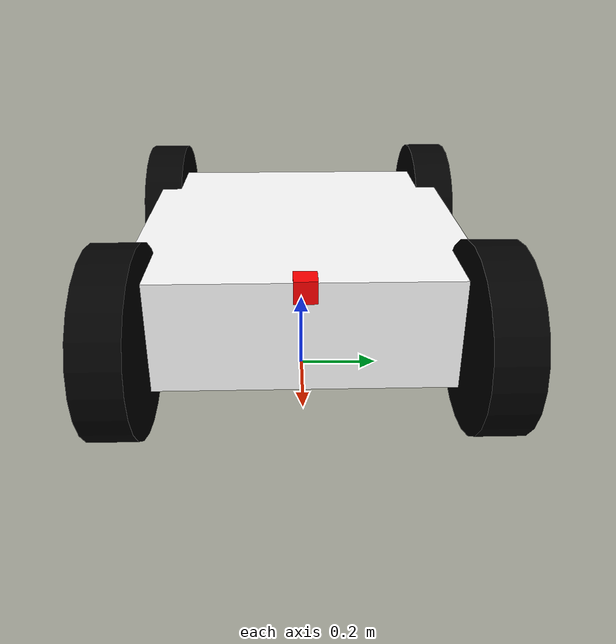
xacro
<?xml version="1.0"?>
<!-- |    robot.urdf.xacro  (ROS 2 / gz port)                                    | -->
<!-- |    author: Koji Shibata                                                   | -->
<!-- |    e-mail: kshibata.0519@gmail.com                                        | -->
<!-- |    This is a URDF file that describes an omnidirectional                   | -->
<!-- |    four-wheeled robot for ROS 2 users.                                     | -->
<robot name="omnidirectional_four_wheeled_robot" xmlns:xacro="http://ros.org/wiki/xacro">
<xacro:property name="x_size" value="0.75"/>
<xacro:property name="y_size" value="0.75"/>
<xacro:property name="z_size" value="0.25"/>
<xacro:property name="body_mass" value="1."/>
<xacro:property name="cylinder_radius" value="0.2"/>
<xacro:property name="cylinder_length" value="0.1"/>
<xacro:property name="wheel_mass" value="0.5"/>
<xacro:property name="effort_limit" value="1."/>
<xacro:property name="velocity_limit" value="5."/>

<!-- Absolute path to the ros2_control controller configuration.                -->
<!-- Passed in from the launch file (resolved from the package share dir).      -->
<xacro:arg name="controllers_config" default=""/>

<xacro:include filename="$(find omnidirectional_four_wheeled_robot)/urdf/wheel.urdf.xacro"/>
<xacro:include filename="$(find omnidirectional_four_wheeled_robot)/urdf/camera.urdf.xacro"/>
<xacro:include filename="$(find omnidirectional_four_wheeled_robot)/urdf/laser.urdf.xacro"/>

	<link name="base_link"/>
	<link name="body_link">
		<visual>
			<geometry>
				<box size="${x_size} ${y_size} ${z_size}"/>
			</geometry>
			<material name="White">
				<color rgba="1. 1. 1. 1."/>
			</material>
		</visual>

		<collision>
			<geometry>
				<box size="${x_size} ${y_size} ${z_size}"/>
			</geometry>
		</collision>

		<inertial>
			<origin xyz="0. 0. 0."/>
			<mass value="${body_mass}"/>
			<inertia ixx="${body_mass * (y_size**2 + z_size**2) / 12}" ixy="0." ixz="0."
					  iyy="${body_mass * (x_size**2 + z_size**2) / 12}" iyz="0."
					  izz="${body_mass * (x_size**2 + y_size**2) / 12}"/>
		</inertial>
	</link>

	<link name="frontPoint_link">
		<visual>
			<geometry>
				<box size="0.05 0.05 0.05"/>
			</geometry>
			<material name="Red">
				<color rgba="1. 0. 0. 1."/>
			</material>
		</visual>

		<collision>
			<geometry>
				<box size="0.05 0.05 0.05"/>
			</geometry>
		</collision>

		<inertial>
			<origin xyz="0. 0. 0."/>
			<mass value="1.e-6"/>
			<inertia ixx="1.e-6" ixy="0." ixz="0." iyy="1.e-6" iyz="0." izz="1.e-6"/>
		</inertial>
	</link>

	<joint name="base_joint" type="fixed">
		<origin xyz="0. 0. 0.3" rpy="0. 0. 0."/>
		<parent link="base_link"/>
		<child link="body_link"/>
		<dynamics damping="0." friction="0."/>
	</joint>

	<joint name="frontPoint_joint" type="fixed">
		<origin xyz="${x_size/2 - 0.02} 0. ${z_size/2 - 0.02}" rpy="0. 0. 0."/>
		<parent link="body_link"/>
		<child link="frontPoint_link"/>
	</joint>

	<xacro:wheel_macro suffix="FRwheel" parent="body_link" x_pos="0.375"  y_pos="0.375"/>
	<xacro:wheel_macro suffix="RRwheel" parent="body_link" x_pos="0.375"  y_pos="-0.375"/>
	<xacro:wheel_macro suffix="FLwheel" parent="body_link" x_pos="-0.375" y_pos="0.375"/>
	<xacro:wheel_macro suffix="RLwheel" parent="body_link" x_pos="-0.375" y_pos="-0.375"/>
	<xacro:camera_macro prefix="camera" parent="body_link" xyz="${x_size/2} 0. ${z_size/2}"/>

	<!-- ros2_control: a single system aggregating all 8 wheel joints. -->
	<ros2_control name="GazeboSimSystem" type="system">
		<hardware>
			<plugin>gz_ros2_control/GazeboSimSystem</plugin>
		</hardware>
		<xacro:wheel_ros2_control suffix="FRwheel"/>
		<xacro:wheel_ros2_control suffix="RRwheel"/>
		<xacro:wheel_ros2_control suffix="FLwheel"/>
		<xacro:wheel_ros2_control suffix="RLwheel"/>
	</ros2_control>

	<gazebo reference="base_link">
		<mu1 value="0.05"/>
		<mu2 value="0.05"/>
	</gazebo>

	<gazebo reference="frontPoint_link">
		<material>Gazebo/Red</material>
	</gazebo>

	<!-- IMU sensor (handled by gz-sim-imu-system, bridged to ROS). -->
	<gazebo reference="body_link">
		<sensor name="imu_sensor" type="imu">
			<always_on>1</always_on>
			<update_rate>50</update_rate>
			<topic>imu</topic>
			<gz_frame_id>body_link</gz_frame_id>
			<imu>
				<angular_velocity>
					<x><noise type="gaussian"><mean>0.</mean><stddev>1.e-3</stddev></noise></x>
					<y><noise type="gaussian"><mean>0.</mean><stddev>1.e-3</stddev></noise></y>
					<z><noise type="gaussian"><mean>0.</mean><stddev>1.e-3</stddev></noise></z>
				</angular_velocity>
				<linear_acceleration>
					<x><noise type="gaussian"><mean>0.</mean><stddev>1.e-3</stddev></noise></x>
					<y><noise type="gaussian"><mean>0.</mean><stddev>1.e-3</stddev></noise></y>
					<z><noise type="gaussian"><mean>0.</mean><stddev>1.e-3</stddev></noise></z>
				</linear_acceleration>
			</imu>
		</sensor>
	</gazebo>

	<!-- gz_ros2_control system plugin: loads the controller_manager inside gz. -->
	<gazebo>
		<plugin filename="gz_ros2_control-system"
				name="gz_ros2_control::GazeboSimROS2ControlPlugin">
			<parameters>$(arg controllers_config)</parameters>
		</plugin>
	</gazebo>
</robot>

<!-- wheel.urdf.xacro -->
<!-- |    wheel.urdf.xacro  (ROS 2 / gz port)                                    | -->
<!-- |    author: Koji Shibata                                                   | -->
<!-- |    e-mail: kshibata.0519@gmail.com                                        | -->
<!-- |    This is a URDF file that describes an omnidirectional                   | -->
<!-- |    four-wheeled robot for ROS 2 users.                                     | -->
<robot xmlns:xacro="http://ros.org/wiki/xacro">

	<!-- Kinematic/visual description of one wheel (steering link + drive link). -->
	<xacro:macro name="wheel_macro" params="suffix parent x_pos y_pos">
		<link name="${suffix}_link1">
			<visual>
				<origin xyz="0. 0. 0." rpy="-${pi/2} 0. 0."/>
				<geometry>
					<cylinder radius="${cylinder_radius}" length="${cylinder_length}"/>
				</geometry>
				<material name="Black">
					<color rgba="0. 0. 0. 1."/>
				</material>
			</visual>
			<collision>
				<origin xyz="0. 0. 0." rpy="-${pi/2} 0. 0."/>
				<geometry>
					<cylinder radius="${cylinder_radius}" length="${cylinder_length}"/>
				</geometry>
			</collision>
			<inertial>
				<origin xyz="0. 0. 0." rpy="-${pi/2} 0. 0."/>
				<mass value="${wheel_mass}"/>
				<inertia ixx="${wheel_mass * cylinder_radius**2 / 2}" ixy="0." ixz="0."
						  	 iyy="${wheel_mass * (cylinder_radius**2 / 4 + cylinder_length**2 / 12)}" iyz="0."
						 	 	 izz="${wheel_mass * (cylinder_radius**2 / 4 + cylinder_length**2 / 12)}"/>
			</inertial>
		</link>

		<link name="${suffix}_link2">
			<visual>
				<origin xyz="0. 0. 0." rpy="-${pi/2} 0. 0."/>
				<geometry>
					<cylinder radius="${cylinder_radius}" length="${cylinder_length}"/>
				</geometry>
				<material name="Black">
					<color rgba="0. 0. 0. 1."/>
				</material>
			</visual>
			<collision>
				<origin xyz="0. 0. 0." rpy="-${pi/2} 0. 0."/>
				<geometry>
					<cylinder radius="${cylinder_radius}" length="${cylinder_length}"/>
				</geometry>
			</collision>
			<inertial>
				<origin xyz="0. 0. 0." rpy="-${pi/2} 0. 0."/>
				<mass value="${wheel_mass}"/>
				<inertia ixx="${wheel_mass * cylinder_radius**2 / 2}" ixy="0." ixz="0."
					  		 iyy="${wheel_mass * (cylinder_radius**2 / 4 + cylinder_length**2 / 12)}" iyz="0."
						  	 izz="${wheel_mass * (cylinder_radius**2 / 4 + cylinder_length**2 / 12)}"/>
			</inertial>
		</link>

		<!-- joint1: steering (position controlled) -->
		<joint name="${suffix}_joint1" type="continuous">
			<origin xyz="${x_pos} ${y_pos} 0." rpy="0. 0. 0."/>
			<axis xyz="0. 0. 1."/>
			<parent link="${parent}"/>
			<child link="${suffix}_link1"/>
			<dynamics damping="1." friction="0."/>
		</joint>

		<!-- joint2: drive (velocity controlled) -->
		<joint name="${suffix}_joint2" type="continuous">
			<origin xyz="0. 0. 0." rpy="0. 0. 0."/>
			<axis xyz="0. 1. 0."/>
			<parent link="${suffix}_link1"/>
			<child link="${suffix}_link2"/>
			<dynamics damping="1." friction="0."/>
		</joint>

		<gazebo reference="${suffix}_link1">
			<mu1 value="0.05"/>
			<mu2 value="0.05"/>
			<material>Gazebo/Black</material>
		</gazebo>

		<gazebo reference="${suffix}_link2">
			<mu1 value="0.80"/>
			<mu2 value="0.80"/>
			<material>Gazebo/Black</material>
		</gazebo>
	</xacro:macro>

	<!-- ros2_control joint entries for one wheel.                                -->
	<!-- joint1 = steering (position command), joint2 = drive (velocity command). -->
	<xacro:macro name="wheel_ros2_control" params="suffix">
		<joint name="${suffix}_joint1">
			<command_interface name="position">
				<param name="min">-${pi}</param>
				<param name="max">${pi}</param>
			</command_interface>
			<state_interface name="position"/>
			<state_interface name="velocity"/>
		</joint>
		<joint name="${suffix}_joint2">
			<command_interface name="velocity">
				<param name="min">-${velocity_limit}</param>
				<param name="max">${velocity_limit}</param>
			</command_interface>
			<state_interface name="position"/>
			<state_interface name="velocity"/>
		</joint>
	</xacro:macro>
</robot>

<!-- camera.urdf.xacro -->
<!-- |    camera.urdf.xacro  (ROS 2 / gz port)                                   | -->
<!-- |    author: Koji Shibata                                                   | -->
<!-- |    e-mail: kshibata.0519@gmail.com                                        | -->
<!-- |    This is a URDF file that describes an omnidirectional                   | -->
<!-- |    four-wheeled robot for ROS 2 users.                                     | -->
<robot xmlns:xacro="http://ros.org/wiki/xacro">
  <xacro:macro name="camera_macro" params="parent prefix xyz">
	<link name="${prefix}_link"/>

	<joint name="${prefix}_joint" type="fixed">
	  <parent link="${parent}"/>
	  <child  link="${prefix}_link"/>
	  <origin xyz="${xyz}" rpy="${-pi/2} 0. ${-pi/2}"/>
	</joint>

	<!-- gz camera sensor. Handled by gz-sim-sensors-system (loaded in the    -->
	<!-- world) and bridged to ROS via ros_gz_bridge (see config/gz_bridge.yaml). -->
	<gazebo reference="${prefix}_link">
	  <sensor type="camera" name="${prefix}">
		<always_on>1</always_on>
		<update_rate>30</update_rate>
		<visualize>true</visualize>
		<topic>${prefix}/image</topic>
		<gz_frame_id>${prefix}_link</gz_frame_id>
		<camera name="${prefix}">
		  <horizontal_fov>1.3962634</horizontal_fov>
		  <image>
			<width>800</width>
			<height>600</height>
			<format>R8G8B8</format>
		  </image>
		  <clip>
			<near>0.02</near>
			<far>300</far>
		  </clip>
		  <noise>
			<type>gaussian</type>
			<mean>0.</mean>
			<stddev>0.007</stddev>
		  </noise>
		</camera>
	  </sensor>
	</gazebo>
  </xacro:macro>
</robot>
